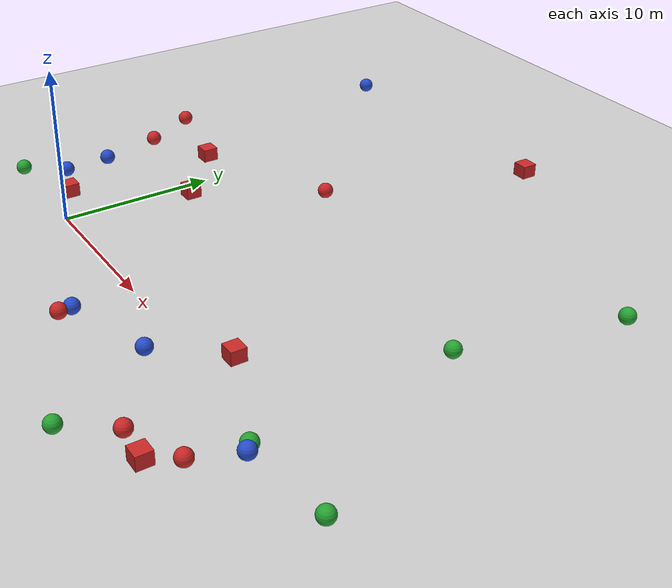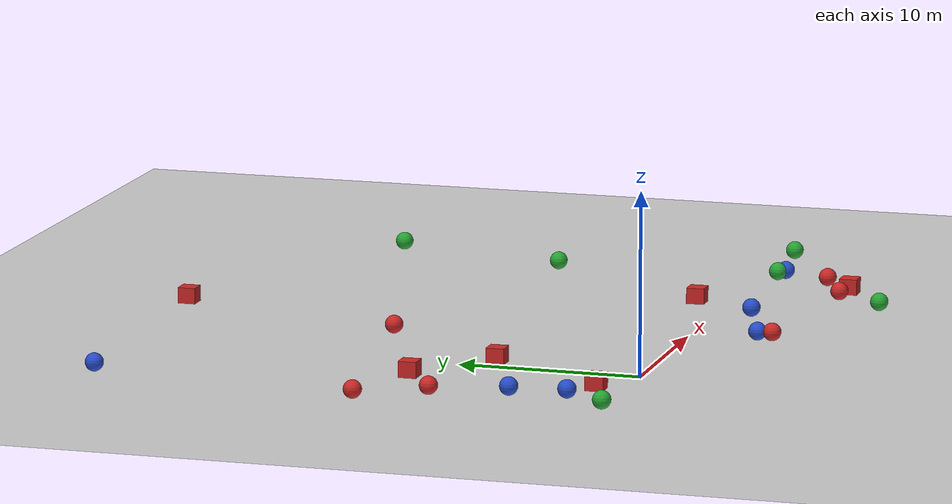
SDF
<sdf version="1.6">
 <world name="default">
  <light name="sun" type="directional">
   <pose>0 0 10 0 -0 0</pose>
   <diffuse>0.8 0.8 0.8 1</diffuse>
   <specular>0.1 0.1 0.1 1</specular>
   <attenuation>
    <range>1000</range>
    <constant>0.9</constant>
    <linear>0.01</linear>
    <quadratic>0.001</quadratic>
   </attenuation>
   <direction>-0.5 0.5 -1</direction>
  </light>
  <model name="ground_plane">
   <static>1</static>
   <link name="link">
    <collision name="collision">
     <geometry><plane><normal>0 0 1</normal><size>100 100</size></plane></geometry>
     <surface><friction><ode><mu>100</mu><mu2>50</mu2></ode></friction></surface>
    </collision>
    <visual name="visual">
     <cast_shadows>0</cast_shadows>
     <geometry><plane><normal>0 0 1</normal><size>100 100</size></plane></geometry>
     <material>
      <script><uri>file://media/materials/scripts/gazebo.material</uri><name>Gazebo/Grey</name></script>
     </material>
    </visual>
   </link>
  </model>
  <model name="unit_box_red_6">
   <pose>23.2628993544 -5.87134574136 0.329741 0 -0 0</pose>
   <link name="link">
    <inertial>
     <mass>1</mass>
     <inertia>
      <ixx>0.166667</ixx>
      <ixy>0</ixy>
      <ixz>0</ixz>
      <iyy>0.166667</iyy>
      <iyz>0</iyz>
      <izz>0.166667</izz>
     </inertia>
    </inertial>
    <collision name="collision"><geometry><box><size>1 1 0.999999</size></box></geometry></collision>
    <visual name="visual">
     <geometry><box><size>1 1 0.999999</size></box></geometry>
     <material>
      <script><name>Gazebo/Red</name><uri>file://media/materials/scripts/gazebo.material</uri></script>
     </material>
    </visual>
   </link>
  </model>
  <model name="unit_box_red_5">
   <pose>-3.10701103095 1.55729415305 0.329741 0 -0 0</pose>
   <link name="link">
    <inertial>
     <mass>1</mass>
     <inertia>
      <ixx>0.166667</ixx>
      <ixy>0</ixy>
      <ixz>0</ixz>
      <iyy>0.166667</iyy>
      <iyz>0</iyz>
      <izz>0.166667</izz>
     </inertia>
    </inertial>
    <collision name="collision"><geometry><box><size>1 1 0.999999</size></box></geometry></collision>
    <visual name="visual">
     <geometry><box><size>1 1 0.999999</size></box></geometry>
     <material>
      <script><name>Gazebo/Red</name><uri>file://media/materials/scripts/gazebo.material</uri></script>
     </material>
    </visual>
   </link>
  </model>
  <model name="unit_box_red_4">
   <pose>1.30382309117 8.24650517616 0.329741 0 -0 0</pose>
   <link name="link">
    <inertial>
     <mass>1</mass>
     <inertia>
      <ixx>0.166667</ixx>
      <ixy>0</ixy>
      <ixz>0</ixz>
      <iyy>0.166667</iyy>
      <iyz>0</iyz>
      <izz>0.166667</izz>
     </inertia>
    </inertial>
    <collision name="collision"><geometry><box><size>1 1 0.999999</size></box></geometry></collision>
    <visual name="visual">
     <geometry><box><size>1 1 0.999999</size></box></geometry>
     <material>
      <script><name>Gazebo/Red</name><uri>file://media/materials/scripts/gazebo.material</uri></script>
     </material>
    </visual>
   </link>
  </model>
  <model name="unit_box_red_3">
   <pose>-2.98798383913 11.8162622304 0.329741 0 -0 0</pose>
   <link name="link">
    <inertial>
     <mass>1</mass>
     <inertia>
      <ixx>0.166667</ixx>
      <ixy>0</ixy>
      <ixz>0</ixz>
      <iyy>0.166667</iyy>
      <iyz>0</iyz>
      <izz>0.166667</izz>
     </inertia>
    </inertial>
    <collision name="collision"><geometry><box><size>1 1 0.999999</size></box></geometry></collision>
    <visual name="visual">
     <geometry><box><size>1 1 0.999999</size></box></geometry>
     <material>
      <script><name>Gazebo/Red</name><uri>file://media/materials/scripts/gazebo.material</uri></script>
     </material>
    </visual>
   </link>
  </model>
  <model name="unit_box_red_2">
   <pose>10.7222627532 28.9018680943 0.329741 0 -0 0</pose>
   <link name="link">
    <inertial>
     <mass>1</mass>
     <inertia>
      <ixx>0.166667</ixx>
      <ixy>0</ixy>
      <ixz>0</ixz>
      <iyy>0.166667</iyy>
      <iyz>0</iyz>
      <izz>0.166667</izz>
     </inertia>
    </inertial>
    <collision name="collision"><geometry><box><size>1 1 0.999999</size></box></geometry></collision>
    <visual name="visual">
     <geometry><box><size>1 1 0.999999</size></box></geometry>
     <material>
      <script><name>Gazebo/Red</name><uri>file://media/materials/scripts/gazebo.material</uri></script>
     </material>
    </visual>
   </link>
  </model>
  <model name="unit_box_red_1">
   <pose>18.6063685876 1.74491019871 0.329741 0 -0 0</pose>
   <link name="link">
    <inertial>
     <mass>1</mass>
     <inertia>
      <ixx>0.166667</ixx>
      <ixy>0</ixy>
      <ixz>0</ixz>
      <iyy>0.166667</iyy>
      <iyz>0</iyz>
      <izz>0.166667</izz>
     </inertia>
    </inertial>
    <collision name="collision"><geometry><box><size>1 1 0.999999</size></box></geometry></collision>
    <visual name="visual">
     <geometry><box><size>1 1 0.999999</size></box></geometry>
     <material>
      <script><name>Gazebo/Red</name><uri>file://media/materials/scripts/gazebo.material</uri></script>
     </material>
    </visual>
   </link>
  </model>
  <model name="unit_sphere_red_6">
   <pose>21.195400342 -5.75600520197 0.5 0 -0 0</pose>
   <link name="link">
    <inertial>
     <mass>1</mass>
     <inertia><ixx>0.1</ixx><ixy>0</ixy><ixz>0</ixz><iyy>0.1</iyy><iyz>0</iyz><izz>0.1</izz></inertia>
    </inertial>
    <collision name="collision"><geometry><sphere><radius>0.5</radius></sphere></geometry></collision>
    <visual name="visual">
     <geometry><sphere><radius>0.5</radius></sphere></geometry>
     <material>
      <script><name>Gazebo/Red</name><uri>file://media/materials/scripts/gazebo.material</uri></script>
     </material>
    </visual>
   </link>
  </model>
  <model name="unit_sphere_red_5">
   <pose>10.2670947473 -4.61370591378 0.5 0 -0 0</pose>
   <link name="link">
    <inertial>
     <mass>1</mass>
     <inertia><ixx>0.1</ixx><ixy>0</ixy><ixz>0</ixz><iyy>0.1</iyy><iyz>0</iyz><izz>0.1</izz></inertia>
    </inertial>
    <collision name="collision"><geometry><sphere><radius>0.5</radius></sphere></geometry></collision>
    <visual name="visual">
     <geometry><sphere><radius>0.5</radius></sphere></geometry>
     <material>
      <script><name>Gazebo/Red</name><uri>file://media/materials/scripts/gazebo.material</uri></script>
     </material>
    </visual>
   </link>
  </model>
  <model name="unit_sphere_red_4">
   <pose>6.29115724655 15.5709844833 0.5 0 -0 0</pose>
   <link name="link">
    <inertial>
     <mass>1</mass>
     <inertia><ixx>0.1</ixx><ixy>0</ixy><ixz>0</ixz><iyy>0.1</iyy><iyz>0</iyz><izz>0.1</izz></inertia>
    </inertial>
    <collision name="collision"><geometry><sphere><radius>0.5</radius></sphere></geometry></collision>
    <visual name="visual">
     <geometry><sphere><radius>0.5</radius></sphere></geometry>
     <material>
      <script><name>Gazebo/Red</name><uri>file://media/materials/scripts/gazebo.material</uri></script>
     </material>
    </visual>
   </link>
  </model>
  <model name="unit_sphere_red_3">
   <pose>24.5714822329 -4.28615378809 0.5 0 -0 0</pose>
   <link name="link">
    <inertial>
     <mass>1</mass>
     <inertia><ixx>0.1</ixx><ixy>0</ixy><ixz>0</ixz><iyy>0.1</iyy><iyz>0</iyz><izz>0.1</izz></inertia>
    </inertial>
    <collision name="collision"><geometry><sphere><radius>0.5</radius></sphere></geometry></collision>
    <visual name="visual">
     <geometry><sphere><radius>0.5</radius></sphere></geometry>
     <material>
      <script><name>Gazebo/Red</name><uri>file://media/materials/scripts/gazebo.material</uri></script>
     </material>
    </visual>
   </link>
  </model>
  <model name="unit_sphere_red_2">
   <pose>-8.8379475754 13.1151379594 0.5 0 -0 0</pose>
   <link name="link">
    <inertial>
     <mass>1</mass>
     <inertia><ixx>0.1</ixx><ixy>0</ixy><ixz>0</ixz><iyy>0.1</iyy><iyz>0</iyz><izz>0.1</izz></inertia>
    </inertial>
    <collision name="collision"><geometry><sphere><radius>0.5</radius></sphere></geometry></collision>
    <visual name="visual">
     <geometry><sphere><radius>0.5</radius></sphere></geometry>
     <material>
      <script><name>Gazebo/Red</name><uri>file://media/materials/scripts/gazebo.material</uri></script>
     </material>
    </visual>
   </link>
  </model>
  <model name="unit_sphere_red_1">
   <pose>-6.90493497711 9.57400903989 0.5 0 -0 0</pose>
   <link name="link">
    <inertial>
     <mass>1</mass>
     <inertia><ixx>0.1</ixx><ixy>0</ixy><ixz>0</ixz><iyy>0.1</iyy><iyz>0</iyz><izz>0.1</izz></inertia>
    </inertial>
    <collision name="collision"><geometry><sphere><radius>0.5</radius></sphere></geometry></collision>
    <visual name="visual">
     <geometry><sphere><radius>0.5</radius></sphere></geometry>
     <material>
      <script><name>Gazebo/Red</name><uri>file://media/materials/scripts/gazebo.material</uri></script>
     </material>
    </visual>
   </link>
  </model>
  <model name="unit_sphere_green_6">
   <pose>31.0757224095 -0.797401889451 0.5 0 -0 0</pose>
   <link name="link">
    <inertial>
     <mass>1</mass>
     <inertia><ixx>0.1</ixx><ixy>0</ixy><ixz>0</ixz><iyy>0.1</iyy><iyz>0</iyz><izz>0.1</izz></inertia>
    </inertial>
    <collision name="collision"><geometry><sphere><radius>0.5</radius></sphere></geometry></collision>
    <visual name="visual">
     <geometry><sphere><radius>0.5</radius></sphere></geometry>
     <material>
      <script><name>Gazebo/Green</name><uri>file://media/materials/scripts/gazebo.material</uri></script>
     </material>
    </visual>
   </link>
  </model>
  <model name="unit_sphere_green_5">
   <pose>-7.44955758533 0.0501387654356 0.5 0 -0 0</pose>
   <link name="link">
    <inertial>
     <mass>1</mass>
     <inertia><ixx>0.1</ixx><ixy>0</ixy><ixz>0</ixz><iyy>0.1</iyy><iyz>0</iyz><izz>0.1</izz></inertia>
    </inertial>
    <collision name="collision"><geometry><sphere><radius>0.5</radius></sphere></geometry></collision>
    <visual name="visual">
     <geometry><sphere><radius>0.5</radius></sphere></geometry>
     <material>
      <script><name>Gazebo/Green</name><uri>file://media/materials/scripts/gazebo.material</uri></script>
     </material>
    </visual>
   </link>
  </model>
  <model name="unit_sphere_green_4">
   <pose>27.1907606408 21.4544770827 0.5 0 -0 0</pose>
   <link name="link">
    <inertial>
     <mass>1</mass>
     <inertia><ixx>0.1</ixx><ixy>0</ixy><ixz>0</ixz><iyy>0.1</iyy><iyz>0</iyz><izz>0.1</izz></inertia>
    </inertial>
    <collision name="collision"><geometry><sphere><radius>0.5</radius></sphere></geometry></collision>
    <visual name="visual">
     <geometry><sphere><radius>0.5</radius></sphere></geometry>
     <material>
      <script><name>Gazebo/Green</name><uri>file://media/materials/scripts/gazebo.material</uri></script>
     </material>
    </visual>
   </link>
  </model>
  <model name="unit_sphere_green_3">
   <pose>19.1589000776 -8.49920123839 0.5 0 -0 0</pose>
   <link name="link">
    <inertial>
     <mass>1</mass>
     <inertia><ixx>0.1</ixx><ixy>0</ixy><ixz>0</ixz><iyy>0.1</iyy><iyz>0</iyz><izz>0.1</izz></inertia>
    </inertial>
    <collision name="collision"><geometry><sphere><radius>0.5</radius></sphere></geometry></collision>
    <visual name="visual">
     <geometry><sphere><radius>0.5</radius></sphere></geometry>
     <material>
      <script><name>Gazebo/Green</name><uri>file://media/materials/scripts/gazebo.material</uri></script>
     </material>
    </visual>
   </link>
  </model>
  <model name="unit_sphere_green_2">
   <pose>25.2796904945 -1.22490241228 0.5 0 -0 0</pose>
   <link name="link">
    <inertial>
     <mass>1</mass>
     <inertia><ixx>0.1</ixx><ixy>0</ixy><ixz>0</ixz><iyy>0.1</iyy><iyz>0</iyz><izz>0.1</izz></inertia>
    </inertial>
    <collision name="collision"><geometry><sphere><radius>0.5</radius></sphere></geometry></collision>
    <visual name="visual">
     <geometry><sphere><radius>0.5</radius></sphere></geometry>
     <material>
      <script><name>Gazebo/Green</name><uri>file://media/materials/scripts/gazebo.material</uri></script>
     </material>
    </visual>
   </link>
  </model>
  <model name="unit_sphere_green_1">
   <pose>24.5618091287 11.448490349 0.5 0 -0 0</pose>
   <link name="link">
    <inertial>
     <mass>1</mass>
     <inertia><ixx>0.1</ixx><ixy>0</ixy><ixz>0</ixz><iyy>0.1</iyy><iyz>0</iyz><izz>0.1</izz></inertia>
    </inertial>
    <collision name="collision"><geometry><sphere><radius>0.5</radius></sphere></geometry></collision>
    <visual name="visual">
     <geometry><sphere><radius>0.5</radius></sphere></geometry>
     <material>
      <script><name>Gazebo/Green</name><uri>file://media/materials/scripts/gazebo.material</uri></script>
     </material>
    </visual>
   </link>
  </model>
  <model name="unit_sphere_blue_6">
   <pose>15.7853867325 -2.07120565112 0.5 0 -0 0</pose>
   <link name="link">
    <inertial>
     <mass>1</mass>
     <inertia><ixx>0.1</ixx><ixy>0</ixy><ixz>0</ixz><iyy>0.1</iyy><iyz>0</iyz><izz>0.1</izz></inertia>
    </inertial>
    <collision name="collision"><geometry><sphere><radius>0.5</radius></sphere></geometry></collision>
    <visual name="visual">
     <geometry><sphere><radius>0.5</radius></sphere></geometry>
     <material>
      <script><name>Gazebo/Blue</name><uri>file://media/materials/scripts/gazebo.material</uri></script>
     </material>
    </visual>
   </link>
  </model>
  <model name="unit_sphere_blue_5">
   <pose>-5.64226580426 2.42236271548 0.5 0 -0 0</pose>
   <link name="link">
    <inertial>
     <mass>1</mass>
     <inertia><ixx>0.1</ixx><ixy>0</ixy><ixz>0</ixz><iyy>0.1</iyy><iyz>0</iyz><izz>0.1</izz></inertia>
    </inertial>
    <collision name="collision"><geometry><sphere><radius>0.5</radius></sphere></geometry></collision>
    <visual name="visual">
     <geometry><sphere><radius>0.5</radius></sphere></geometry>
     <material>
      <script><name>Gazebo/Blue</name><uri>file://media/materials/scripts/gazebo.material</uri></script>
     </material>
    </visual>
   </link>
  </model>
  <model name="unit_sphere_blue_4">
   <pose>10.2142066743 -3.80911035886 0.5 0 -0 0</pose>
   <link name="link">
    <inertial>
     <mass>1</mass>
     <inertia><ixx>0.1</ixx><ixy>0</ixy><ixz>0</ixz><iyy>0.1</iyy><iyz>0</iyz><izz>0.1</izz></inertia>
    </inertial>
    <collision name="collision"><geometry><sphere><radius>0.5</radius></sphere></geometry></collision>
    <visual name="visual">
     <geometry><sphere><radius>0.5</radius></sphere></geometry>
     <material>
      <script><name>Gazebo/Blue</name><uri>file://media/materials/scripts/gazebo.material</uri></script>
     </material>
    </visual>
   </link>
  </model>
  <model name="unit_sphere_blue_3">
   <pose>-6.82284846454 28.1099010104 0.5 0 -0 0</pose>
   <link name="link">
    <inertial>
     <mass>1</mass>
     <inertia><ixx>0.1</ixx><ixy>0</ixy><ixz>0</ixz><iyy>0.1</iyy><iyz>0</iyz><izz>0.1</izz></inertia>
    </inertial>
    <collision name="collision"><geometry><sphere><radius>0.5</radius></sphere></geometry></collision>
    <visual name="visual">
     <geometry><sphere><radius>0.5</radius></sphere></geometry>
     <material>
      <script><name>Gazebo/Blue</name><uri>file://media/materials/scripts/gazebo.material</uri></script>
     </material>
    </visual>
   </link>
  </model>
  <model name="unit_sphere_blue_2">
   <pose>-5.87589284038 5.51352887279 0.5 0 -0 0</pose>
   <link name="link">
    <inertial>
     <mass>1</mass>
     <inertia><ixx>0.1</ixx><ixy>0</ixy><ixz>0</ixz><iyy>0.1</iyy><iyz>0</iyz><izz>0.1</izz></inertia>
    </inertial>
    <collision name="collision"><geometry><sphere><radius>0.5</radius></sphere></geometry></collision>
    <visual name="visual">
     <geometry><sphere><radius>0.5</radius></sphere></geometry>
     <material>
      <script><name>Gazebo/Blue</name><uri>file://media/materials/scripts/gazebo.material</uri></script>
     </material>
    </visual>
   </link>
  </model>
  <model name="unit_sphere_blue_1">
   <pose>25.7001186209 -1.5867010284 0.5 0 -0 0</pose>
   <link name="link">
    <inertial>
     <mass>1</mass>
     <inertia><ixx>0.1</ixx><ixy>0</ixy><ixz>0</ixz><iyy>0.1</iyy><iyz>0</iyz><izz>0.1</izz></inertia>
    </inertial>
    <collision name="collision"><geometry><sphere><radius>0.5</radius></sphere></geometry></collision>
    <visual name="visual">
     <geometry><sphere><radius>0.5</radius></sphere></geometry>
     <material>
      <script><name>Gazebo/Blue</name><uri>file://media/materials/scripts/gazebo.material</uri></script>
     </material>
    </visual>
   </link>
  </model>
  <gravity>0 0 -9.8</gravity>
  <magnetic_field>6e-06 2.3e-05 -4.2e-05</magnetic_field>
  <atmosphere type="adiabatic"/>
  <physics default="0" name="default_physics" type="ode">
   <max_step_size>0.001</max_step_size>
   <real_time_factor>1</real_time_factor>
   <real_time_update_rate>1000</real_time_update_rate>
  </physics>
  <scene><ambient>0.4 0.4 0.4 1</ambient><background>0.7 0.7 0.7 1</background><shadows>1</shadows></scene>
  <spherical_coordinates>
   <surface_model>EARTH_WGS84</surface_model>
   <latitude_deg>0</latitude_deg>
   <longitude_deg>0</longitude_deg>
   <elevation>0</elevation>
   <heading_deg>0</heading_deg>
  </spherical_coordinates>
 </world>
</sdf>
